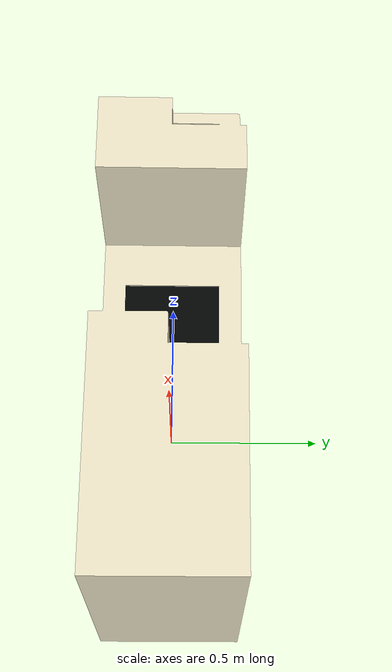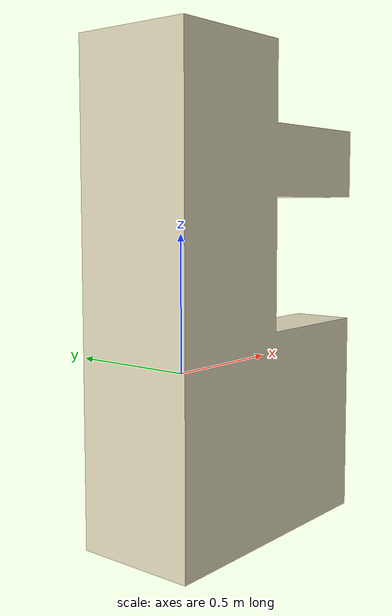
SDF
<?xml version='1.0'?>
<sdf version='1.7'>
  <model name='post_wb'>
    <static>true</static>
    <pose>0 0 0 0 0 0</pose>
    <link name='post_wb_link'>
      <pose>0 0 0 0 0 0</pose>
      <visual name='post_wb_visual'>
        <geometry>
          <mesh>
            <uri>model://post_wb/meshes/post_wb.dae</uri>
          </mesh>
        </geometry>
      </visual>
      <!-- per-part collision: one STL per object so the recesses stay open -->
      <collision name='Cube_big'>
        <geometry><mesh><uri>model://post_wb/collision/Cube_big.stl</uri></mesh></geometry>
      </collision>
      <collision name='Cube_001'>
        <geometry><mesh><uri>model://post_wb/collision/Cube_001.stl</uri></mesh></geometry>
      </collision>
      <collision name='Cube_pair'>
        <geometry><mesh><uri>model://post_wb/collision/Cube_pair.stl</uri></mesh></geometry>
      </collision>
    </link>
  </model>
</sdf>
